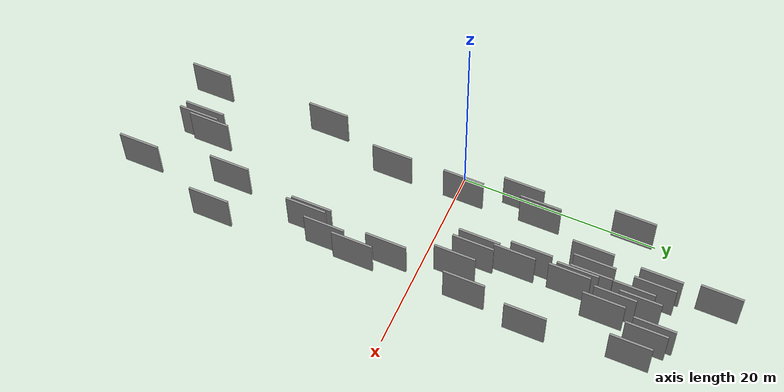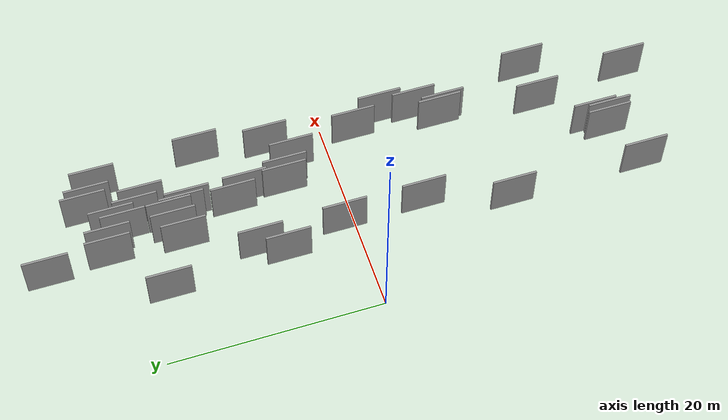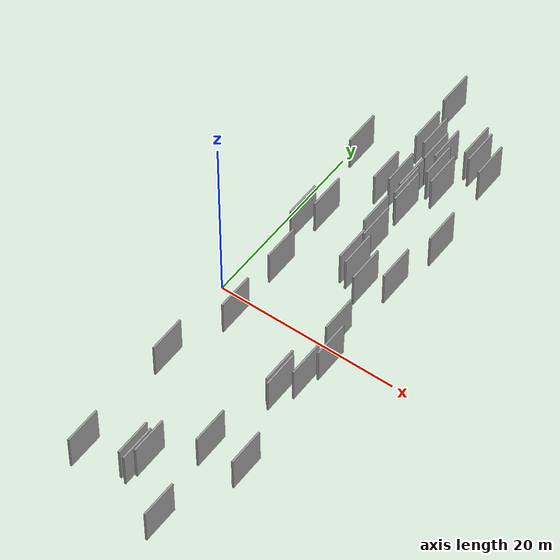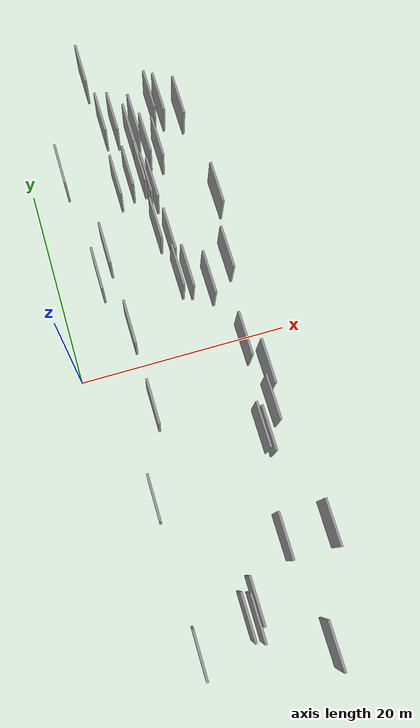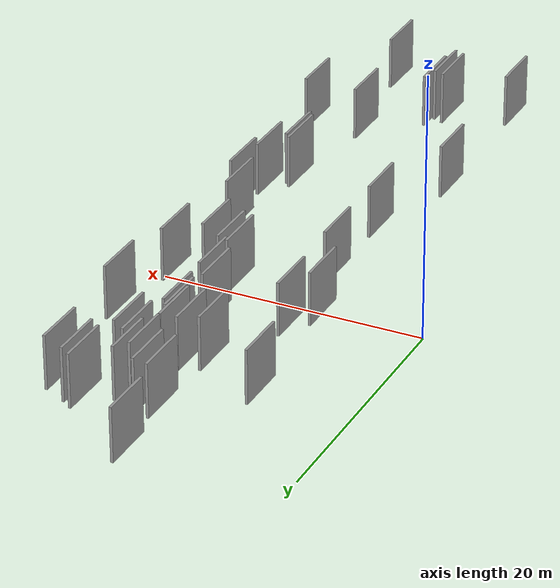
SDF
<sdf version="1.6">
 <world name="default">
  <scene>
   <sky><clouds><speed>12</speed></clouds></sky>
   <ambient>0.4 0.4 0.4 1</ambient>
   <background>0.7 0.7 0.7 1</background>
   <shadows>1</shadows>
  </scene>
  <gravity>0 0 -9.8066</gravity>
  <magnetic_field>6e-06 2.3e-05 -4.2e-05</magnetic_field>
  <physics default="0" name="default_physics" type="ode">
   <ode>
    <solver>
     <type>quick</type>
     <iters>10</iters>
     <sor>1.0</sor>
     <use_dynamic_moi_rescaling>0</use_dynamic_moi_rescaling>
    </solver>
    <constraints>
     <cfm>0</cfm>
     <erp>0.2</erp>
     <contact_max_correcting_vel>100</contact_max_correcting_vel>
     <contact_surface_layer>0.001</contact_surface_layer>
    </constraints>
   </ode>
   <max_step_size>0.004</max_step_size>
   <real_time_factor>1</real_time_factor>
   <real_time_update_rate>250</real_time_update_rate>
  </physics>
  <light name="sun" type="directional">
   <pose>0 0 10 0 0 0</pose>
   <diffuse>0.8 0.8 0.8 1</diffuse>
   <specular>0.2 0.2 0.2 1</specular>
   <attenuation>
    <range>1000</range>
    <constant>0.9</constant>
    <linear>0.01</linear>
    <quadratic>0.001</quadratic>
   </attenuation>
   <direction>-0.5 0.1 -0.9</direction>
  </light>
  <model name="grey_wall_1">
   <static>1</static>
   <pose>16.6338 12.5371 5.0 0.000000 0.000000 1.570796</pose>
   <link name="link">
    <pose>0 0 2.00 0 0 0</pose>
    <collision name="collision"><geometry><box><size>4.00 0.2 4.00</size></box></geometry></collision>
    <visual name="visual">
     <cast_shadows>0</cast_shadows>
     <geometry><box><size>4.00 0.2 4.00</size></box></geometry>
     <material>
      <script>
       <uri>model://grey_wall/materials/scripts</uri>
       <uri>model://grey_wall/materials/textures</uri>
       <name>vrc/grey_wall</name>
      </script>
     </material>
    </visual>
   </link>
  </model>
  <model name="grey_wall_2">
   <static>1</static>
   <pose>11.7208 19.1572 5.0 0.000000 0.000000 1.570796</pose>
   <link name="link">
    <pose>0 0 2.00 0 0 0</pose>
    <collision name="collision"><geometry><box><size>4.00 0.2 4.00</size></box></geometry></collision>
    <visual name="visual">
     <cast_shadows>0</cast_shadows>
     <geometry><box><size>4.00 0.2 4.00</size></box></geometry>
     <material>
      <script>
       <uri>model://grey_wall/materials/scripts</uri>
       <uri>model://grey_wall/materials/textures</uri>
       <name>vrc/grey_wall</name>
      </script>
     </material>
    </visual>
   </link>
  </model>
  <model name="grey_wall_3">
   <static>1</static>
   <pose>8.2926 22.3262 5.0 0.000000 0.000000 1.570796</pose>
   <link name="link">
    <pose>0 0 2.00 0 0 0</pose>
    <collision name="collision"><geometry><box><size>4.00 0.2 4.00</size></box></geometry></collision>
    <visual name="visual">
     <cast_shadows>0</cast_shadows>
     <geometry><box><size>4.00 0.2 4.00</size></box></geometry>
     <material>
      <script>
       <uri>model://grey_wall/materials/scripts</uri>
       <uri>model://grey_wall/materials/textures</uri>
       <name>vrc/grey_wall</name>
      </script>
     </material>
    </visual>
   </link>
  </model>
  <model name="grey_wall_4">
   <static>1</static>
   <pose>14.0427 22.8927 5.0 0.000000 0.000000 1.570796</pose>
   <link name="link">
    <pose>0 0 2.00 0 0 0</pose>
    <collision name="collision"><geometry><box><size>4.00 0.2 4.00</size></box></geometry></collision>
    <visual name="visual">
     <cast_shadows>0</cast_shadows>
     <geometry><box><size>4.00 0.2 4.00</size></box></geometry>
     <material>
      <script>
       <uri>model://grey_wall/materials/scripts</uri>
       <uri>model://grey_wall/materials/textures</uri>
       <name>vrc/grey_wall</name>
      </script>
     </material>
    </visual>
   </link>
  </model>
  <model name="grey_wall_5">
   <static>1</static>
   <pose>8.8997 -24.0471 5.0 0.000000 0.000000 1.570796</pose>
   <link name="link">
    <pose>0 0 2.00 0 0 0</pose>
    <collision name="collision"><geometry><box><size>4.00 0.2 4.00</size></box></geometry></collision>
    <visual name="visual">
     <cast_shadows>0</cast_shadows>
     <geometry><box><size>4.00 0.2 4.00</size></box></geometry>
     <material>
      <script>
       <uri>model://grey_wall/materials/scripts</uri>
       <uri>model://grey_wall/materials/textures</uri>
       <name>vrc/grey_wall</name>
      </script>
     </material>
    </visual>
   </link>
  </model>
  <model name="grey_wall_6">
   <static>1</static>
   <pose>15.7053 6.3134 5.0 0.000000 0.000000 1.570796</pose>
   <link name="link">
    <pose>0 0 2.00 0 0 0</pose>
    <collision name="collision"><geometry><box><size>4.00 0.2 4.00</size></box></geometry></collision>
    <visual name="visual">
     <cast_shadows>0</cast_shadows>
     <geometry><box><size>4.00 0.2 4.00</size></box></geometry>
     <material>
      <script>
       <uri>model://grey_wall/materials/scripts</uri>
       <uri>model://grey_wall/materials/textures</uri>
       <name>vrc/grey_wall</name>
      </script>
     </material>
    </visual>
   </link>
  </model>
  <model name="grey_wall_7">
   <static>1</static>
   <pose>13.5047 4.5026 5.0 0.000000 0.000000 1.570796</pose>
   <link name="link">
    <pose>0 0 2.00 0 0 0</pose>
    <collision name="collision"><geometry><box><size>4.00 0.2 4.00</size></box></geometry></collision>
    <visual name="visual">
     <cast_shadows>0</cast_shadows>
     <geometry><box><size>4.00 0.2 4.00</size></box></geometry>
     <material>
      <script>
       <uri>model://grey_wall/materials/scripts</uri>
       <uri>model://grey_wall/materials/textures</uri>
       <name>vrc/grey_wall</name>
      </script>
     </material>
    </visual>
   </link>
  </model>
  <model name="grey_wall_8">
   <static>1</static>
   <pose>16.9233 -18.7114 5.0 0.000000 0.000000 1.570796</pose>
   <link name="link">
    <pose>0 0 2.00 0 0 0</pose>
    <collision name="collision"><geometry><box><size>4.00 0.2 4.00</size></box></geometry></collision>
    <visual name="visual">
     <cast_shadows>0</cast_shadows>
     <geometry><box><size>4.00 0.2 4.00</size></box></geometry>
     <material>
      <script>
       <uri>model://grey_wall/materials/scripts</uri>
       <uri>model://grey_wall/materials/textures</uri>
       <name>vrc/grey_wall</name>
      </script>
     </material>
    </visual>
   </link>
  </model>
  <model name="grey_wall_9">
   <static>1</static>
   <pose>12.9235 -18.6646 5.0 0.000000 0.000000 1.570796</pose>
   <link name="link">
    <pose>0 0 2.00 0 0 0</pose>
    <collision name="collision"><geometry><box><size>4.00 0.2 4.00</size></box></geometry></collision>
    <visual name="visual">
     <cast_shadows>0</cast_shadows>
     <geometry><box><size>4.00 0.2 4.00</size></box></geometry>
     <material>
      <script>
       <uri>model://grey_wall/materials/scripts</uri>
       <uri>model://grey_wall/materials/textures</uri>
       <name>vrc/grey_wall</name>
      </script>
     </material>
    </visual>
   </link>
  </model>
  <model name="grey_wall_10">
   <static>1</static>
   <pose>4.1106 7.5083 5.0 0.000000 0.000000 1.570796</pose>
   <link name="link">
    <pose>0 0 2.00 0 0 0</pose>
    <collision name="collision"><geometry><box><size>4.00 0.2 4.00</size></box></geometry></collision>
    <visual name="visual">
     <cast_shadows>0</cast_shadows>
     <geometry><box><size>4.00 0.2 4.00</size></box></geometry>
     <material>
      <script>
       <uri>model://grey_wall/materials/scripts</uri>
       <uri>model://grey_wall/materials/textures</uri>
       <name>vrc/grey_wall</name>
      </script>
     </material>
    </visual>
   </link>
  </model>
  <model name="grey_wall_11">
   <static>1</static>
   <pose>10.7207 15.2473 5.0 0.000000 0.000000 1.570796</pose>
   <link name="link">
    <pose>0 0 2.00 0 0 0</pose>
    <collision name="collision"><geometry><box><size>4.00 0.2 4.00</size></box></geometry></collision>
    <visual name="visual">
     <cast_shadows>0</cast_shadows>
     <geometry><box><size>4.00 0.2 4.00</size></box></geometry>
     <material>
      <script>
       <uri>model://grey_wall/materials/scripts</uri>
       <uri>model://grey_wall/materials/textures</uri>
       <name>vrc/grey_wall</name>
      </script>
     </material>
    </visual>
   </link>
  </model>
  <model name="grey_wall_12">
   <static>1</static>
   <pose>3.7684 -25.3880 5.0 0.000000 0.000000 1.570796</pose>
   <link name="link">
    <pose>0 0 2.00 0 0 0</pose>
    <collision name="collision"><geometry><box><size>4.00 0.2 4.00</size></box></geometry></collision>
    <visual name="visual">
     <cast_shadows>0</cast_shadows>
     <geometry><box><size>4.00 0.2 4.00</size></box></geometry>
     <material>
      <script>
       <uri>model://grey_wall/materials/scripts</uri>
       <uri>model://grey_wall/materials/textures</uri>
       <name>vrc/grey_wall</name>
      </script>
     </material>
    </visual>
   </link>
  </model>
  <model name="grey_wall_13">
   <static>1</static>
   <pose>11.1551 14.6577 5.0 0.000000 0.000000 1.570796</pose>
   <link name="link">
    <pose>0 0 2.00 0 0 0</pose>
    <collision name="collision"><geometry><box><size>4.00 0.2 4.00</size></box></geometry></collision>
    <visual name="visual">
     <cast_shadows>0</cast_shadows>
     <geometry><box><size>4.00 0.2 4.00</size></box></geometry>
     <material>
      <script>
       <uri>model://grey_wall/materials/scripts</uri>
       <uri>model://grey_wall/materials/textures</uri>
       <name>vrc/grey_wall</name>
      </script>
     </material>
    </visual>
   </link>
  </model>
  <model name="grey_wall_14">
   <static>1</static>
   <pose>5.5936 2.0140 5.0 0.000000 0.000000 1.570796</pose>
   <link name="link">
    <pose>0 0 2.00 0 0 0</pose>
    <collision name="collision"><geometry><box><size>4.00 0.2 4.00</size></box></geometry></collision>
    <visual name="visual">
     <cast_shadows>0</cast_shadows>
     <geometry><box><size>4.00 0.2 4.00</size></box></geometry>
     <material>
      <script>
       <uri>model://grey_wall/materials/scripts</uri>
       <uri>model://grey_wall/materials/textures</uri>
       <name>vrc/grey_wall</name>
      </script>
     </material>
    </visual>
   </link>
  </model>
  <model name="grey_wall_15">
   <static>1</static>
   <pose>11.0317 5.8766 5.0 0.000000 0.000000 1.570796</pose>
   <link name="link">
    <pose>0 0 2.00 0 0 0</pose>
    <collision name="collision"><geometry><box><size>4.00 0.2 4.00</size></box></geometry></collision>
    <visual name="visual">
     <cast_shadows>0</cast_shadows>
     <geometry><box><size>4.00 0.2 4.00</size></box></geometry>
     <material>
      <script>
       <uri>model://grey_wall/materials/scripts</uri>
       <uri>model://grey_wall/materials/textures</uri>
       <name>vrc/grey_wall</name>
      </script>
     </material>
    </visual>
   </link>
  </model>
  <model name="grey_wall_16">
   <static>1</static>
   <pose>3.5711 -12.8731 5.0 0.000000 0.000000 1.570796</pose>
   <link name="link">
    <pose>0 0 2.00 0 0 0</pose>
    <collision name="collision"><geometry><box><size>4.00 0.2 4.00</size></box></geometry></collision>
    <visual name="visual">
     <cast_shadows>0</cast_shadows>
     <geometry><box><size>4.00 0.2 4.00</size></box></geometry>
     <material>
      <script>
       <uri>model://grey_wall/materials/scripts</uri>
       <uri>model://grey_wall/materials/textures</uri>
       <name>vrc/grey_wall</name>
      </script>
     </material>
    </visual>
   </link>
  </model>
  <model name="grey_wall_17">
   <static>1</static>
   <pose>13.2911 23.3875 5.0 0.000000 0.000000 1.570796</pose>
   <link name="link">
    <pose>0 0 2.00 0 0 0</pose>
    <collision name="collision"><geometry><box><size>4.00 0.2 4.00</size></box></geometry></collision>
    <visual name="visual">
     <cast_shadows>0</cast_shadows>
     <geometry><box><size>4.00 0.2 4.00</size></box></geometry>
     <material>
      <script>
       <uri>model://grey_wall/materials/scripts</uri>
       <uri>model://grey_wall/materials/textures</uri>
       <name>vrc/grey_wall</name>
      </script>
     </material>
    </visual>
   </link>
  </model>
  <model name="grey_wall_18">
   <static>1</static>
   <pose>3.4284 18.1562 5.0 0.000000 0.000000 1.570796</pose>
   <link name="link">
    <pose>0 0 2.00 0 0 0</pose>
    <collision name="collision"><geometry><box><size>4.00 0.2 4.00</size></box></geometry></collision>
    <visual name="visual">
     <cast_shadows>0</cast_shadows>
     <geometry><box><size>4.00 0.2 4.00</size></box></geometry>
     <material>
      <script>
       <uri>model://grey_wall/materials/scripts</uri>
       <uri>model://grey_wall/materials/textures</uri>
       <name>vrc/grey_wall</name>
      </script>
     </material>
    </visual>
   </link>
  </model>
  <model name="grey_wall_19">
   <static>1</static>
   <pose>14.8635 -1.7004 5.0 0.000000 0.000000 1.570796</pose>
   <link name="link">
    <pose>0 0 2.00 0 0 0</pose>
    <collision name="collision"><geometry><box><size>4.00 0.2 4.00</size></box></geometry></collision>
    <visual name="visual">
     <cast_shadows>0</cast_shadows>
     <geometry><box><size>4.00 0.2 4.00</size></box></geometry>
     <material>
      <script>
       <uri>model://grey_wall/materials/scripts</uri>
       <uri>model://grey_wall/materials/textures</uri>
       <name>vrc/grey_wall</name>
      </script>
     </material>
    </visual>
   </link>
  </model>
  <model name="grey_wall_20">
   <static>1</static>
   <pose>8.1845 -23.7643 5.0 0.000000 0.000000 1.570796</pose>
   <link name="link">
    <pose>0 0 2.00 0 0 0</pose>
    <collision name="collision"><geometry><box><size>4.00 0.2 4.00</size></box></geometry></collision>
    <visual name="visual">
     <cast_shadows>0</cast_shadows>
     <geometry><box><size>4.00 0.2 4.00</size></box></geometry>
     <material>
      <script>
       <uri>model://grey_wall/materials/scripts</uri>
       <uri>model://grey_wall/materials/textures</uri>
       <name>vrc/grey_wall</name>
      </script>
     </material>
    </visual>
   </link>
  </model>
  <model name="grey_wall_21">
   <static>1</static>
   <pose>5.3794 9.6300 5.0 0.000000 0.000000 1.570796</pose>
   <link name="link">
    <pose>0 0 2.00 0 0 0</pose>
    <collision name="collision"><geometry><box><size>4.00 0.2 4.00</size></box></geometry></collision>
    <visual name="visual">
     <cast_shadows>0</cast_shadows>
     <geometry><box><size>4.00 0.2 4.00</size></box></geometry>
     <material>
      <script>
       <uri>model://grey_wall/materials/scripts</uri>
       <uri>model://grey_wall/materials/textures</uri>
       <name>vrc/grey_wall</name>
      </script>
     </material>
    </visual>
   </link>
  </model>
  <model name="grey_wall_22">
   <static>1</static>
   <pose>11.2618 9.3961 5.0 0.000000 0.000000 1.570796</pose>
   <link name="link">
    <pose>0 0 2.00 0 0 0</pose>
    <collision name="collision"><geometry><box><size>4.00 0.2 4.00</size></box></geometry></collision>
    <visual name="visual">
     <cast_shadows>0</cast_shadows>
     <geometry><box><size>4.00 0.2 4.00</size></box></geometry>
     <material>
      <script>
       <uri>model://grey_wall/materials/scripts</uri>
       <uri>model://grey_wall/materials/textures</uri>
       <name>vrc/grey_wall</name>
      </script>
     </material>
    </visual>
   </link>
  </model>
  <model name="grey_wall_23">
   <static>1</static>
   <pose>9.3036 16.3489 5.0 0.000000 0.000000 1.570796</pose>
   <link name="link">
    <pose>0 0 2.00 0 0 0</pose>
    <collision name="collision"><geometry><box><size>4.00 0.2 4.00</size></box></geometry></collision>
    <visual name="visual">
     <cast_shadows>0</cast_shadows>
     <geometry><box><size>4.00 0.2 4.00</size></box></geometry>
     <material>
      <script>
       <uri>model://grey_wall/materials/scripts</uri>
       <uri>model://grey_wall/materials/textures</uri>
       <name>vrc/grey_wall</name>
      </script>
     </material>
    </visual>
   </link>
  </model>
  <model name="grey_wall_24">
   <static>1</static>
   <pose>9.3812 22.0900 5.0 0.000000 0.000000 1.570796</pose>
   <link name="link">
    <pose>0 0 2.00 0 0 0</pose>
    <collision name="collision"><geometry><box><size>4.00 0.2 4.00</size></box></geometry></collision>
    <visual name="visual">
     <cast_shadows>0</cast_shadows>
     <geometry><box><size>4.00 0.2 4.00</size></box></geometry>
     <material>
      <script>
       <uri>model://grey_wall/materials/scripts</uri>
       <uri>model://grey_wall/materials/textures</uri>
       <name>vrc/grey_wall</name>
      </script>
     </material>
    </visual>
   </link>
  </model>
  <model name="grey_wall_25">
   <static>1</static>
   <pose>14.3207 -10.0185 5.0 0.000000 0.000000 1.570796</pose>
   <link name="link">
    <pose>0 0 2.00 0 0 0</pose>
    <collision name="collision"><geometry><box><size>4.00 0.2 4.00</size></box></geometry></collision>
    <visual name="visual">
     <cast_shadows>0</cast_shadows>
     <geometry><box><size>4.00 0.2 4.00</size></box></geometry>
     <material>
      <script>
       <uri>model://grey_wall/materials/scripts</uri>
       <uri>model://grey_wall/materials/textures</uri>
       <name>vrc/grey_wall</name>
      </script>
     </material>
    </visual>
   </link>
  </model>
  <model name="grey_wall_26">
   <static>1</static>
   <pose>10.5050 20.5005 5.0 0.000000 0.000000 1.570796</pose>
   <link name="link">
    <pose>0 0 2.00 0 0 0</pose>
    <collision name="collision"><geometry><box><size>4.00 0.2 4.00</size></box></geometry></collision>
    <visual name="visual">
     <cast_shadows>0</cast_shadows>
     <geometry><box><size>4.00 0.2 4.00</size></box></geometry>
     <material>
      <script>
       <uri>model://grey_wall/materials/scripts</uri>
       <uri>model://grey_wall/materials/textures</uri>
       <name>vrc/grey_wall</name>
      </script>
     </material>
    </visual>
   </link>
  </model>
  <model name="grey_wall_27">
   <static>1</static>
   <pose>10.4790 16.4423 5.0 0.000000 0.000000 1.570796</pose>
   <link name="link">
    <pose>0 0 2.00 0 0 0</pose>
    <collision name="collision"><geometry><box><size>4.00 0.2 4.00</size></box></geometry></collision>
    <visual name="visual">
     <cast_shadows>0</cast_shadows>
     <geometry><box><size>4.00 0.2 4.00</size></box></geometry>
     <material>
      <script>
       <uri>model://grey_wall/materials/scripts</uri>
       <uri>model://grey_wall/materials/textures</uri>
       <name>vrc/grey_wall</name>
      </script>
     </material>
    </visual>
   </link>
  </model>
  <model name="grey_wall_28">
   <static>1</static>
   <pose>11.2073 21.3644 5.0 0.000000 0.000000 1.570796</pose>
   <link name="link">
    <pose>0 0 2.00 0 0 0</pose>
    <collision name="collision"><geometry><box><size>4.00 0.2 4.00</size></box></geometry></collision>
    <visual name="visual">
     <cast_shadows>0</cast_shadows>
     <geometry><box><size>4.00 0.2 4.00</size></box></geometry>
     <material>
      <script>
       <uri>model://grey_wall/materials/scripts</uri>
       <uri>model://grey_wall/materials/textures</uri>
       <name>vrc/grey_wall</name>
      </script>
     </material>
    </visual>
   </link>
  </model>
  <model name="grey_wall_29">
   <static>1</static>
   <pose>9.2045 -22.7828 5.0 0.000000 0.000000 1.570796</pose>
   <link name="link">
    <pose>0 0 2.00 0 0 0</pose>
    <collision name="collision"><geometry><box><size>4.00 0.2 4.00</size></box></geometry></collision>
    <visual name="visual">
     <cast_shadows>0</cast_shadows>
     <geometry><box><size>4.00 0.2 4.00</size></box></geometry>
     <material>
      <script>
       <uri>model://grey_wall/materials/scripts</uri>
       <uri>model://grey_wall/materials/textures</uri>
       <name>vrc/grey_wall</name>
      </script>
     </material>
    </visual>
   </link>
  </model>
  <model name="grey_wall_30">
   <static>1</static>
   <pose>16.0129 -4.5599 5.0 0.000000 0.000000 1.570796</pose>
   <link name="link">
    <pose>0 0 2.00 0 0 0</pose>
    <collision name="collision"><geometry><box><size>4.00 0.2 4.00</size></box></geometry></collision>
    <visual name="visual">
     <cast_shadows>0</cast_shadows>
     <geometry><box><size>4.00 0.2 4.00</size></box></geometry>
     <material>
      <script>
       <uri>model://grey_wall/materials/scripts</uri>
       <uri>model://grey_wall/materials/textures</uri>
       <name>vrc/grey_wall</name>
      </script>
     </material>
    </visual>
   </link>
  </model>
  <model name="grey_wall_31">
   <static>1</static>
   <pose>10.3738 10.6928 5.0 0.000000 0.000000 1.570796</pose>
   <link name="link">
    <pose>0 0 2.00 0 0 0</pose>
    <collision name="collision"><geometry><box><size>4.00 0.2 4.00</size></box></geometry></collision>
    <visual name="visual">
     <cast_shadows>0</cast_shadows>
     <geometry><box><size>4.00 0.2 4.00</size></box></geometry>
     <material>
      <script>
       <uri>model://grey_wall/materials/scripts</uri>
       <uri>model://grey_wall/materials/textures</uri>
       <name>vrc/grey_wall</name>
      </script>
     </material>
    </visual>
   </link>
  </model>
  <model name="grey_wall_32">
   <static>1</static>
   <pose>14.0990 -27.6335 5.0 0.000000 0.000000 1.570796</pose>
   <link name="link">
    <pose>0 0 2.00 0 0 0</pose>
    <collision name="collision"><geometry><box><size>4.00 0.2 4.00</size></box></geometry></collision>
    <visual name="visual">
     <cast_shadows>0</cast_shadows>
     <geometry><box><size>4.00 0.2 4.00</size></box></geometry>
     <material>
      <script>
       <uri>model://grey_wall/materials/scripts</uri>
       <uri>model://grey_wall/materials/textures</uri>
       <name>vrc/grey_wall</name>
      </script>
     </material>
    </visual>
   </link>
  </model>
  <model name="grey_wall_33">
   <static>1</static>
   <pose>8.0047 15.7392 5.0 0.000000 0.000000 1.570796</pose>
   <link name="link">
    <pose>0 0 2.00 0 0 0</pose>
    <collision name="collision"><geometry><box><size>4.00 0.2 4.00</size></box></geometry></collision>
    <visual name="visual">
     <cast_shadows>0</cast_shadows>
     <geometry><box><size>4.00 0.2 4.00</size></box></geometry>
     <material>
      <script>
       <uri>model://grey_wall/materials/scripts</uri>
       <uri>model://grey_wall/materials/textures</uri>
       <name>vrc/grey_wall</name>
      </script>
     </material>
    </visual>
   </link>
  </model>
  <model name="grey_wall_34">
   <static>1</static>
   <pose>5.6438 -5.2371 5.0 0.000000 0.000000 1.570796</pose>
   <link name="link">
    <pose>0 0 2.00 0 0 0</pose>
    <collision name="collision"><geometry><box><size>4.00 0.2 4.00</size></box></geometry></collision>
    <visual name="visual">
     <cast_shadows>0</cast_shadows>
     <geometry><box><size>4.00 0.2 4.00</size></box></geometry>
     <material>
      <script>
       <uri>model://grey_wall/materials/scripts</uri>
       <uri>model://grey_wall/materials/textures</uri>
       <name>vrc/grey_wall</name>
      </script>
     </material>
    </visual>
   </link>
  </model>
  <model name="grey_wall_35">
   <static>1</static>
   <pose>12.7154 18.4509 5.0 0.000000 0.000000 1.570796</pose>
   <link name="link">
    <pose>0 0 2.00 0 0 0</pose>
    <collision name="collision"><geometry><box><size>4.00 0.2 4.00</size></box></geometry></collision>
    <visual name="visual">
     <cast_shadows>0</cast_shadows>
     <geometry><box><size>4.00 0.2 4.00</size></box></geometry>
     <material>
      <script>
       <uri>model://grey_wall/materials/scripts</uri>
       <uri>model://grey_wall/materials/textures</uri>
       <name>vrc/grey_wall</name>
      </script>
     </material>
    </visual>
   </link>
  </model>
  <model name="grey_wall_36">
   <static>1</static>
   <pose>15.7466 22.0562 5.0 0.000000 0.000000 1.570796</pose>
   <link name="link">
    <pose>0 0 2.00 0 0 0</pose>
    <collision name="collision"><geometry><box><size>4.00 0.2 4.00</size></box></geometry></collision>
    <visual name="visual">
     <cast_shadows>0</cast_shadows>
     <geometry><box><size>4.00 0.2 4.00</size></box></geometry>
     <material>
      <script>
       <uri>model://grey_wall/materials/scripts</uri>
       <uri>model://grey_wall/materials/textures</uri>
       <name>vrc/grey_wall</name>
      </script>
     </material>
    </visual>
   </link>
  </model>
  <model name="grey_wall_37">
   <static>1</static>
   <pose>7.8341 27.7976 5.0 0.000000 0.000000 1.570796</pose>
   <link name="link">
    <pose>0 0 2.00 0 0 0</pose>
    <collision name="collision"><geometry><box><size>4.00 0.2 4.00</size></box></geometry></collision>
    <visual name="visual">
     <cast_shadows>0</cast_shadows>
     <geometry><box><size>4.00 0.2 4.00</size></box></geometry>
     <material>
      <script>
       <uri>model://grey_wall/materials/scripts</uri>
       <uri>model://grey_wall/materials/textures</uri>
       <name>vrc/grey_wall</name>
      </script>
     </material>
    </visual>
   </link>
  </model>
  <model name="grey_wall_38">
   <static>1</static>
   <pose>15.4637 -7.6263 5.0 0.000000 0.000000 1.570796</pose>
   <link name="link">
    <pose>0 0 2.00 0 0 0</pose>
    <collision name="collision"><geometry><box><size>4.00 0.2 4.00</size></box></geometry></collision>
    <visual name="visual">
     <cast_shadows>0</cast_shadows>
     <geometry><box><size>4.00 0.2 4.00</size></box></geometry>
     <material>
      <script>
       <uri>model://grey_wall/materials/scripts</uri>
       <uri>model://grey_wall/materials/textures</uri>
       <name>vrc/grey_wall</name>
      </script>
     </material>
    </visual>
   </link>
  </model>
  <model name="grey_wall_39">
   <static>1</static>
   <pose>13.9606 -9.6139 5.0 0.000000 0.000000 1.570796</pose>
   <link name="link">
    <pose>0 0 2.00 0 0 0</pose>
    <collision name="collision"><geometry><box><size>4.00 0.2 4.00</size></box></geometry></collision>
    <visual name="visual">
     <cast_shadows>0</cast_shadows>
     <geometry><box><size>4.00 0.2 4.00</size></box></geometry>
     <material>
      <script>
       <uri>model://grey_wall/materials/scripts</uri>
       <uri>model://grey_wall/materials/textures</uri>
       <name>vrc/grey_wall</name>
      </script>
     </material>
    </visual>
   </link>
  </model>
  <model name="grey_wall_40">
   <static>1</static>
   <pose>11.8443 5.5946 5.0 0.000000 0.000000 1.570796</pose>
   <link name="link">
    <pose>0 0 2.00 0 0 0</pose>
    <collision name="collision"><geometry><box><size>4.00 0.2 4.00</size></box></geometry></collision>
    <visual name="visual">
     <cast_shadows>0</cast_shadows>
     <geometry><box><size>4.00 0.2 4.00</size></box></geometry>
     <material>
      <script>
       <uri>model://grey_wall/materials/scripts</uri>
       <uri>model://grey_wall/materials/textures</uri>
       <name>vrc/grey_wall</name>
      </script>
     </material>
    </visual>
   </link>
  </model>
 </world>
</sdf>
